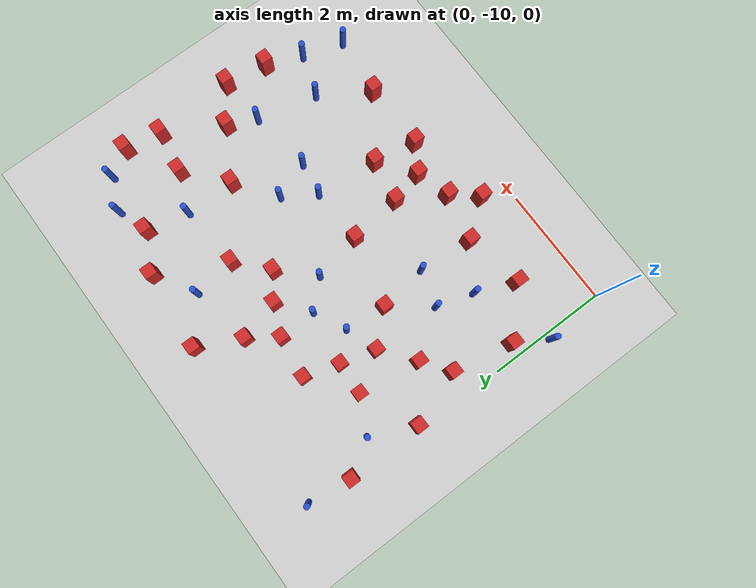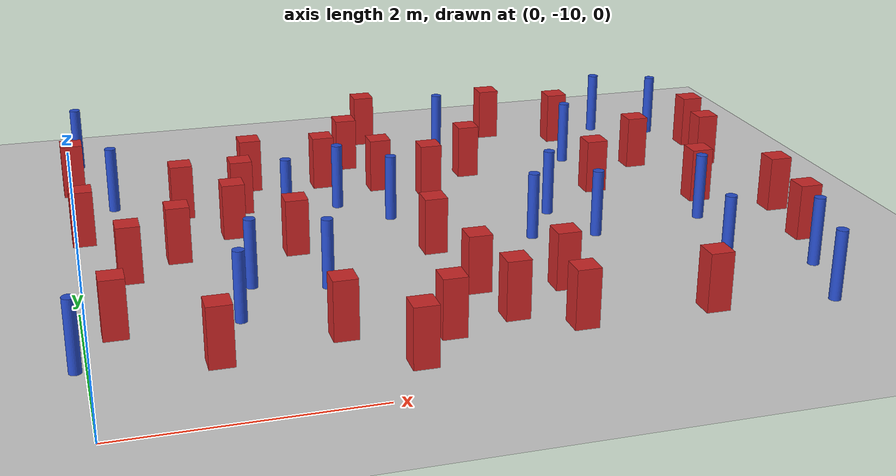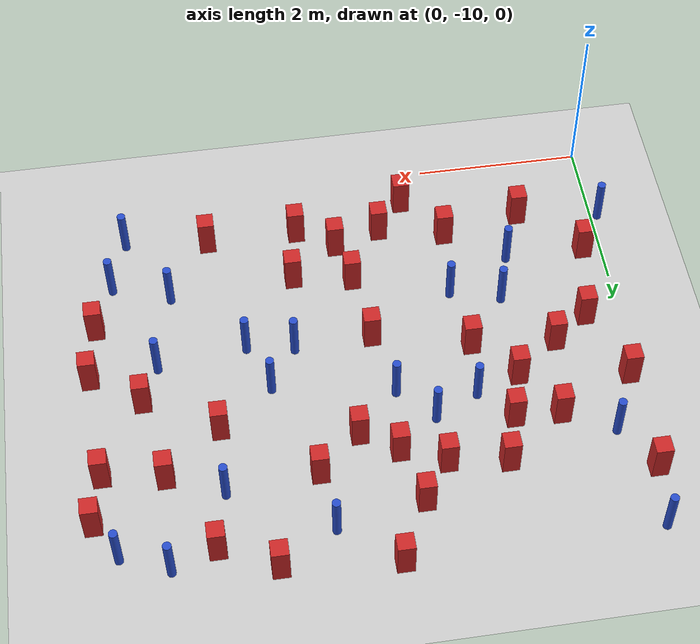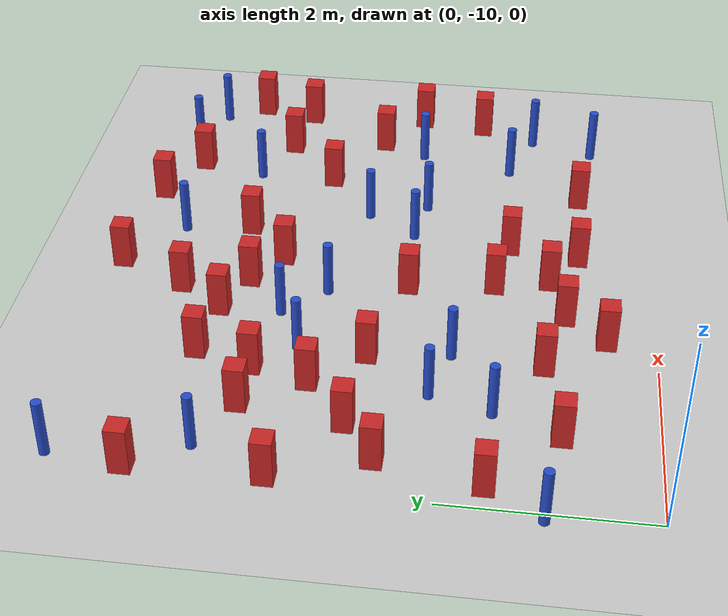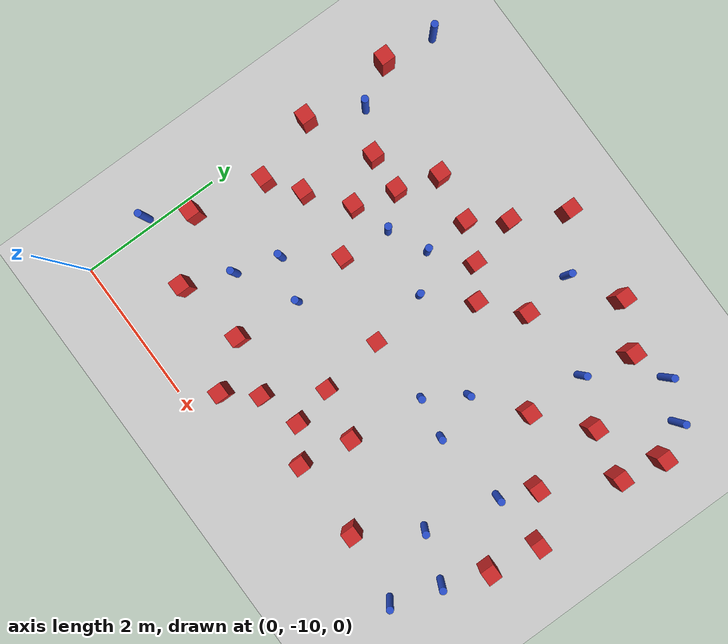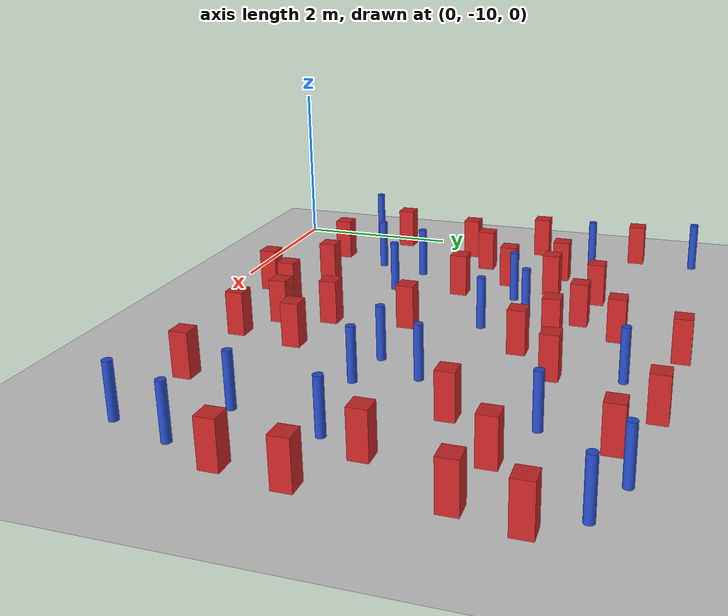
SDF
<sdf version="1.6">
 <world name="default">
  <model name="ground_plane">
   <static>1</static>
   <link name="link">
    <collision name="collision">
     <geometry><plane><normal>0 0 1</normal><size>100 100</size></plane></geometry>
     <surface><friction><ode><mu>100</mu><mu2>50</mu2></ode></friction></surface>
    </collision>
    <visual name="visual">
     <cast_shadows>0</cast_shadows>
     <geometry><plane><normal>0 0 1</normal><size>100 100</size></plane></geometry>
     <material>
      <ambient>1.0 1.0 1.0 1.0</ambient>
      <diffuse>0.8 0.8 0.8 1.0</diffuse>
      <specular>0.01 0.01 0.01 1.000000</specular>
     </material>
    </visual>
   </link>
  </model>
  <model name="pole_obstacle1">
   <static>true</static>
   <pose>5.56627809664 -7.40692104979 -9.47619616065e-06 5.49618799737e-07 2.36310414037e-07 -1.55090534814e-07</pose>
   <link name="link">
    <pose>0 0 0.3 0 -0 0</pose>
    <inertial>
     <mass>1</mass>
     <inertia><ixx>0.145833</ixx><ixy>0</ixy><ixz>0</ixz><iyy>0.145833</iyy><iyz>0</iyz><izz>0.125</izz></inertia>
    </inertial>
    <collision name="collision">
     <geometry><cylinder><radius>0.05</radius><length>.6</length></cylinder></geometry>
    </collision>
    <visual name="visual">
     <geometry><cylinder><radius>0.05</radius><length>.6</length></cylinder></geometry>
     <material>
      <script><name>Gazebo/Blue</name><uri>file://media/materials/scripts/gazebo.material</uri></script>
     </material>
    </visual>
   </link>
  </model>
  <model name="square_post_obstacle19">
   <static>true</static>
   <pose>5.09355135205 -4.90761829041 -6.11067671241e-07 -5.50515727128e-06 -8.79689657224e-07 2.37013304536e-05</pose>
   <link name="link">
    <pose>0 0 0.25 0 -0 0</pose>
    <inertial>
     <mass>100</mass>
     <inertia>
      <ixx>0.166667</ixx>
      <ixy>0</ixy>
      <ixz>0</ixz>
      <iyy>0.166667</iyy>
      <iyz>0</iyz>
      <izz>0.166667</izz>
     </inertia>
    </inertial>
    <collision name="collision"><geometry><box><size>.2 .2 .5</size></box></geometry></collision>
    <visual name="visual">
     <geometry><box><size>.2 .2 .5</size></box></geometry>
     <material>
      <script><name>Gazebo/Red</name><uri>file://media/materials/scripts/gazebo.material</uri></script>
     </material>
    </visual>
   </link>
  </model>
  <model name="square_post_obstacle20">
   <static>true</static>
   <pose>3.11336619792 -4.46068472534 -6.11067671241e-07 -5.50515727128e-06 -8.79689657224e-07 2.37013304536e-05</pose>
   <link name="link">
    <pose>0 0 0.25 0 -0 0</pose>
    <inertial>
     <mass>100</mass>
     <inertia>
      <ixx>0.166667</ixx>
      <ixy>0</ixy>
      <ixz>0</ixz>
      <iyy>0.166667</iyy>
      <iyz>0</iyz>
      <izz>0.166667</izz>
     </inertia>
    </inertial>
    <collision name="collision"><geometry><box><size>.2 .2 .5</size></box></geometry></collision>
    <visual name="visual">
     <geometry><box><size>.2 .2 .5</size></box></geometry>
     <material>
      <script><name>Gazebo/Red</name><uri>file://media/materials/scripts/gazebo.material</uri></script>
     </material>
    </visual>
   </link>
  </model>
  <model name="pole_obstacle13">
   <static>true</static>
   <pose>0.439902832676 -5.78268501385 -9.47619616065e-06 5.49618799737e-07 2.36310414065e-07 -1.55090534796e-07</pose>
   <link name="link">
    <pose>0 0 0.3 0 -0 0</pose>
    <inertial>
     <mass>1</mass>
     <inertia><ixx>0.145833</ixx><ixy>0</ixy><ixz>0</ixz><iyy>0.145833</iyy><iyz>0</iyz><izz>0.125</izz></inertia>
    </inertial>
    <collision name="collision">
     <geometry><cylinder><radius>0.05</radius><length>.6</length></cylinder></geometry>
    </collision>
    <visual name="visual">
     <geometry><cylinder><radius>0.05</radius><length>.6</length></cylinder></geometry>
     <material>
      <script><name>Gazebo/Blue</name><uri>file://media/materials/scripts/gazebo.material</uri></script>
     </material>
    </visual>
   </link>
  </model>
  <model name="pole_obstacle16">
   <static>true</static>
   <pose>-0.0822495026502 -8.96081779854 -9.47619616065e-06 5.49618799738e-07 2.36310414031e-07 -1.55090534818e-07</pose>
   <link name="link">
    <pose>0 0 0.3 0 -0 0</pose>
    <inertial>
     <mass>1</mass>
     <inertia><ixx>0.145833</ixx><ixy>0</ixy><ixz>0</ixz><iyy>0.145833</iyy><iyz>0</iyz><izz>0.125</izz></inertia>
    </inertial>
    <collision name="collision">
     <geometry><cylinder><radius>0.05</radius><length>.6</length></cylinder></geometry>
    </collision>
    <visual name="visual">
     <geometry><cylinder><radius>0.05</radius><length>.6</length></cylinder></geometry>
     <material>
      <script><name>Gazebo/Blue</name><uri>file://media/materials/scripts/gazebo.material</uri></script>
     </material>
    </visual>
   </link>
  </model>
  <model name="square_post_obstacle27">
   <static>true</static>
   <pose>2.94282083598 -5.85030339063 -6.11067671241e-07 -5.50515727128e-06 -8.79689657224e-07 2.37013304536e-05</pose>
   <link name="link">
    <pose>0 0 0.25 0 -0 0</pose>
    <inertial>
     <mass>100</mass>
     <inertia>
      <ixx>0.166667</ixx>
      <ixy>0</ixy>
      <ixz>0</ixz>
      <iyy>0.166667</iyy>
      <iyz>0</iyz>
      <izz>0.166667</izz>
     </inertia>
    </inertial>
    <collision name="collision"><geometry><box><size>.2 .2 .5</size></box></geometry></collision>
    <visual name="visual">
     <geometry><box><size>.2 .2 .5</size></box></geometry>
     <material>
      <script><name>Gazebo/Red</name><uri>file://media/materials/scripts/gazebo.material</uri></script>
     </material>
    </visual>
   </link>
  </model>
  <model name="pole_obstacle43">
   <static>true</static>
   <pose>6.16214379933 -4.95591234419 -9.47619616065e-06 5.49618799737e-07 2.36310414037e-07 -1.55090534814e-07</pose>
   <link name="link">
    <pose>0 0 0.3 0 -0 0</pose>
    <inertial>
     <mass>1</mass>
     <inertia><ixx>0.145833</ixx><ixy>0</ixy><ixz>0</ixz><iyy>0.145833</iyy><iyz>0</iyz><izz>0.125</izz></inertia>
    </inertial>
    <collision name="collision">
     <geometry><cylinder><radius>0.05</radius><length>.6</length></cylinder></geometry>
    </collision>
    <visual name="visual">
     <geometry><cylinder><radius>0.05</radius><length>.6</length></cylinder></geometry>
     <material>
      <script><name>Gazebo/Blue</name><uri>file://media/materials/scripts/gazebo.material</uri></script>
     </material>
    </visual>
   </link>
  </model>
  <model name="pole_obstacle45">
   <static>true</static>
   <pose>1.38102999543 -7.83665164656 -9.47619616065e-06 5.49618799737e-07 2.36310414061e-07 -1.550905348e-07</pose>
   <link name="link">
    <pose>0 0 0.3 0 -0 0</pose>
    <inertial>
     <mass>1</mass>
     <inertia><ixx>0.145833</ixx><ixy>0</ixy><ixz>0</ixz><iyy>0.145833</iyy><iyz>0</iyz><izz>0.125</izz></inertia>
    </inertial>
    <collision name="collision">
     <geometry><cylinder><radius>0.05</radius><length>.6</length></cylinder></geometry>
    </collision>
    <visual name="visual">
     <geometry><cylinder><radius>0.05</radius><length>.6</length></cylinder></geometry>
     <material>
      <script><name>Gazebo/Blue</name><uri>file://media/materials/scripts/gazebo.material</uri></script>
     </material>
    </visual>
   </link>
  </model>
  <model name="pole_obstacle46">
   <static>true</static>
   <pose>0.19000915505 -4.49773315218 -9.47619616065e-06 5.49618799738e-07 2.36310414064e-07 -1.55090534799e-07</pose>
   <link name="link">
    <pose>0 0 0.3 0 -0 0</pose>
    <inertial>
     <mass>1</mass>
     <inertia><ixx>0.145833</ixx><ixy>0</ixy><ixz>0</ixz><iyy>0.145833</iyy><iyz>0</iyz><izz>0.125</izz></inertia>
    </inertial>
    <collision name="collision">
     <geometry><cylinder><radius>0.05</radius><length>.6</length></cylinder></geometry>
    </collision>
    <visual name="visual">
     <geometry><cylinder><radius>0.05</radius><length>.6</length></cylinder></geometry>
     <material>
      <script><name>Gazebo/Blue</name><uri>file://media/materials/scripts/gazebo.material</uri></script>
     </material>
    </visual>
   </link>
  </model>
  <model name="pole_obstacle48">
   <static>true</static>
   <pose>2.85308433493 -6.67141594761 -9.47619616065e-06 5.49618799738e-07 2.3631041406e-07 -1.55090534801e-07</pose>
   <link name="link">
    <pose>0 0 0.3 0 -0 0</pose>
    <inertial>
     <mass>1</mass>
     <inertia><ixx>0.145833</ixx><ixy>0</ixy><ixz>0</ixz><iyy>0.145833</iyy><iyz>0</iyz><izz>0.125</izz></inertia>
    </inertial>
    <collision name="collision">
     <geometry><cylinder><radius>0.05</radius><length>.6</length></cylinder></geometry>
    </collision>
    <visual name="visual">
     <geometry><cylinder><radius>0.05</radius><length>.6</length></cylinder></geometry>
     <material>
      <script><name>Gazebo/Blue</name><uri>file://media/materials/scripts/gazebo.material</uri></script>
     </material>
    </visual>
   </link>
  </model>
  <model name="square_post_obstacle57">
   <static>true</static>
   <pose>0.442859099427 -7.41946272738 -6.11067671241e-07 -5.50515727128e-06 -8.79689657224e-07 2.37013304536e-05</pose>
   <link name="link">
    <pose>0 0 0.25 0 -0 0</pose>
    <inertial>
     <mass>100</mass>
     <inertia>
      <ixx>0.166667</ixx>
      <ixy>0</ixy>
      <ixz>0</ixz>
      <iyy>0.166667</iyy>
      <iyz>0</iyz>
      <izz>0.166667</izz>
     </inertia>
    </inertial>
    <collision name="collision"><geometry><box><size>.2 .2 .5</size></box></geometry></collision>
    <visual name="visual">
     <geometry><box><size>.2 .2 .5</size></box></geometry>
     <material>
      <script><name>Gazebo/Red</name><uri>file://media/materials/scripts/gazebo.material</uri></script>
     </material>
    </visual>
   </link>
  </model>
  <model name="square_post_obstacle61">
   <static>true</static>
   <pose>3.86990964567 -5.6933514289 -6.11067671241e-07 -5.50515727128e-06 -8.79689657224e-07 2.37013304536e-05</pose>
   <link name="link">
    <pose>0 0 0.25 0 -0 0</pose>
    <inertial>
     <mass>100</mass>
     <inertia>
      <ixx>0.166667</ixx>
      <ixy>0</ixy>
      <ixz>0</ixz>
      <iyy>0.166667</iyy>
      <iyz>0</iyz>
      <izz>0.166667</izz>
     </inertia>
    </inertial>
    <collision name="collision"><geometry><box><size>.2 .2 .5</size></box></geometry></collision>
    <visual name="visual">
     <geometry><box><size>.2 .2 .5</size></box></geometry>
     <material>
      <script><name>Gazebo/Red</name><uri>file://media/materials/scripts/gazebo.material</uri></script>
     </material>
    </visual>
   </link>
  </model>
  <model name="square_post_obstacle62">
   <static>true</static>
   <pose>0.240696478862 -8.42893630867 -6.11067671241e-07 -5.50515727128e-06 -8.79689657224e-07 2.37013304536e-05</pose>
   <link name="link">
    <pose>0 0 0.25 0 -0 0</pose>
    <inertial>
     <mass>100</mass>
     <inertia>
      <ixx>0.166667</ixx>
      <ixy>0</ixy>
      <ixz>0</ixz>
      <iyy>0.166667</iyy>
      <iyz>0</iyz>
      <izz>0.166667</izz>
     </inertia>
    </inertial>
    <collision name="collision"><geometry><box><size>.2 .2 .5</size></box></geometry></collision>
    <visual name="visual">
     <geometry><box><size>.2 .2 .5</size></box></geometry>
     <material>
      <script><name>Gazebo/Red</name><uri>file://media/materials/scripts/gazebo.material</uri></script>
     </material>
    </visual>
   </link>
  </model>
  <model name="pole_obstacle70">
   <static>true</static>
   <pose>5.82374251369 -9.33074052029 -9.47619616065e-06 5.49618799737e-07 2.36310414065e-07 -1.55090534796e-07</pose>
   <link name="link">
    <pose>0 0 0.3 0 -0 0</pose>
    <inertial>
     <mass>1</mass>
     <inertia><ixx>0.145833</ixx><ixy>0</ixy><ixz>0</ixz><iyy>0.145833</iyy><iyz>0</iyz><izz>0.125</izz></inertia>
    </inertial>
    <collision name="collision">
     <geometry><cylinder><radius>0.05</radius><length>.6</length></cylinder></geometry>
    </collision>
    <visual name="visual">
     <geometry><cylinder><radius>0.05</radius><length>.6</length></cylinder></geometry>
     <material>
      <script><name>Gazebo/Blue</name><uri>file://media/materials/scripts/gazebo.material</uri></script>
     </material>
    </visual>
   </link>
  </model>
  <model name="pole_obstacle71">
   <static>true</static>
   <pose>5.33723821792 -8.4129558654 -9.47619616065e-06 5.49618799737e-07 2.36310414065e-07 -1.55090534796e-07</pose>
   <link name="link">
    <pose>0 0 0.3 0 -0 0</pose>
    <inertial>
     <mass>1</mass>
     <inertia><ixx>0.145833</ixx><ixy>0</ixy><ixz>0</ixz><iyy>0.145833</iyy><iyz>0</iyz><izz>0.125</izz></inertia>
    </inertial>
    <collision name="collision">
     <geometry><cylinder><radius>0.05</radius><length>.6</length></cylinder></geometry>
    </collision>
    <visual name="visual">
     <geometry><cylinder><radius>0.05</radius><length>.6</length></cylinder></geometry>
     <material>
      <script><name>Gazebo/Blue</name><uri>file://media/materials/scripts/gazebo.material</uri></script>
     </material>
    </visual>
   </link>
  </model>
  <model name="pole_obstacle83">
   <static>true</static>
   <pose>1.19721483378 -8.44556449357 -9.47619616065e-06 5.49618799737e-07 2.36310414046e-07 -1.55090534809e-07</pose>
   <link name="link">
    <pose>0 0 0.3 0 -0 0</pose>
    <inertial>
     <mass>1</mass>
     <inertia><ixx>0.145833</ixx><ixy>0</ixy><ixz>0</ixz><iyy>0.145833</iyy><iyz>0</iyz><izz>0.125</izz></inertia>
    </inertial>
    <collision name="collision">
     <geometry><cylinder><radius>0.05</radius><length>.6</length></cylinder></geometry>
    </collision>
    <visual name="visual">
     <geometry><cylinder><radius>0.05</radius><length>.6</length></cylinder></geometry>
     <material>
      <script><name>Gazebo/Blue</name><uri>file://media/materials/scripts/gazebo.material</uri></script>
     </material>
    </visual>
   </link>
  </model>
  <model name="pole_obstacle93">
   <static>true</static>
   <pose>4.27768461021 -6.929750021 -9.47619616065e-06 5.49618799737e-07 2.36310414037e-07 -1.55090534814e-07</pose>
   <link name="link">
    <pose>0 0 0.3 0 -0 0</pose>
    <inertial>
     <mass>1</mass>
     <inertia><ixx>0.145833</ixx><ixy>0</ixy><ixz>0</ixz><iyy>0.145833</iyy><iyz>0</iyz><izz>0.125</izz></inertia>
    </inertial>
    <collision name="collision">
     <geometry><cylinder><radius>0.05</radius><length>.6</length></cylinder></geometry>
    </collision>
    <visual name="visual">
     <geometry><cylinder><radius>0.05</radius><length>.6</length></cylinder></geometry>
     <material>
      <script><name>Gazebo/Blue</name><uri>file://media/materials/scripts/gazebo.material</uri></script>
     </material>
    </visual>
   </link>
  </model>
  <model name="square_post_obstacle83">
   <static>true</static>
   <pose>6.41569011059 -5.39757872294 -6.11067671241e-07 -5.50515727128e-06 -8.79689657224e-07 2.37013304536e-05</pose>
   <link name="link">
    <pose>0 0 0.25 0 -0 0</pose>
    <inertial>
     <mass>100</mass>
     <inertia>
      <ixx>0.166667</ixx>
      <ixy>0</ixy>
      <ixz>0</ixz>
      <iyy>0.166667</iyy>
      <iyz>0</iyz>
      <izz>0.166667</izz>
     </inertia>
    </inertial>
    <collision name="collision"><geometry><box><size>.2 .2 .5</size></box></geometry></collision>
    <visual name="visual">
     <geometry><box><size>.2 .2 .5</size></box></geometry>
     <material>
      <script><name>Gazebo/Red</name><uri>file://media/materials/scripts/gazebo.material</uri></script>
     </material>
    </visual>
   </link>
  </model>
  <model name="square_post_obstacle93">
   <static>true</static>
   <pose>3.12840448905 -8.36266401416 -6.11067671241e-07 -5.50515727128e-06 -8.79689657224e-07 2.37013304536e-05</pose>
   <link name="link">
    <pose>0 0 0.25 0 -0 0</pose>
    <inertial>
     <mass>100</mass>
     <inertia>
      <ixx>0.166667</ixx>
      <ixy>0</ixy>
      <ixz>0</ixz>
      <iyy>0.166667</iyy>
      <iyz>0</iyz>
      <izz>0.166667</izz>
     </inertia>
    </inertial>
    <collision name="collision"><geometry><box><size>.2 .2 .5</size></box></geometry></collision>
    <visual name="visual">
     <geometry><box><size>.2 .2 .5</size></box></geometry>
     <material>
      <script><name>Gazebo/Red</name><uri>file://media/materials/scripts/gazebo.material</uri></script>
     </material>
    </visual>
   </link>
  </model>
  <model name="pole_obstacle106">
   <static>true</static>
   <pose>3.94224176989 -7.45162938686 -9.47619616065e-06 5.49618799738e-07 2.3631041406e-07 -1.55090534801e-07</pose>
   <link name="link">
    <pose>0 0 0.3 0 -0 0</pose>
    <inertial>
     <mass>1</mass>
     <inertia><ixx>0.145833</ixx><ixy>0</ixy><ixz>0</ixz><iyy>0.145833</iyy><iyz>0</iyz><izz>0.125</izz></inertia>
    </inertial>
    <collision name="collision">
     <geometry><cylinder><radius>0.05</radius><length>.6</length></cylinder></geometry>
    </collision>
    <visual name="visual">
     <geometry><cylinder><radius>0.05</radius><length>.6</length></cylinder></geometry>
     <material>
      <script><name>Gazebo/Blue</name><uri>file://media/materials/scripts/gazebo.material</uri></script>
     </material>
    </visual>
   </link>
  </model>
  <model name="pole_obstacle107">
   <static>true</static>
   <pose>3.78141471582 -4.97444473484 -9.47619616065e-06 5.49618799738e-07 2.3631041406e-07 -1.55090534801e-07</pose>
   <link name="link">
    <pose>0 0 0.3 0 -0 0</pose>
    <inertial>
     <mass>1</mass>
     <inertia><ixx>0.145833</ixx><ixy>0</ixy><ixz>0</ixz><iyy>0.145833</iyy><iyz>0</iyz><izz>0.125</izz></inertia>
    </inertial>
    <collision name="collision">
     <geometry><cylinder><radius>0.05</radius><length>.6</length></cylinder></geometry>
    </collision>
    <visual name="visual">
     <geometry><cylinder><radius>0.05</radius><length>.6</length></cylinder></geometry>
     <material>
      <script><name>Gazebo/Blue</name><uri>file://media/materials/scripts/gazebo.material</uri></script>
     </material>
    </visual>
   </link>
  </model>
  <model name="square_post_obstacle97">
   <static>true</static>
   <pose>2.35522278714 -9.49866197872 -6.11067671241e-07 -5.50515727128e-06 -8.79689657224e-07 2.37013304536e-05</pose>
   <link name="link">
    <pose>0 0 0.25 0 -0 0</pose>
    <inertial>
     <mass>100</mass>
     <inertia>
      <ixx>0.166667</ixx>
      <ixy>0</ixy>
      <ixz>0</ixz>
      <iyy>0.166667</iyy>
      <iyz>0</iyz>
      <izz>0.166667</izz>
     </inertia>
    </inertial>
    <collision name="collision"><geometry><box><size>.2 .2 .5</size></box></geometry></collision>
    <visual name="visual">
     <geometry><box><size>.2 .2 .5</size></box></geometry>
     <material>
      <script><name>Gazebo/Red</name><uri>file://media/materials/scripts/gazebo.material</uri></script>
     </material>
    </visual>
   </link>
  </model>
  <model name="square_post_obstacle107">
   <static>true</static>
   <pose>4.92158257431 -6.43737209554 -6.11067671241e-07 -5.50515727128e-06 -8.79689657224e-07 2.37013304536e-05</pose>
   <link name="link">
    <pose>0 0 0.25 0 -0 0</pose>
    <inertial>
     <mass>100</mass>
     <inertia>
      <ixx>0.166667</ixx>
      <ixy>0</ixy>
      <ixz>0</ixz>
      <iyy>0.166667</iyy>
      <iyz>0</iyz>
      <izz>0.166667</izz>
     </inertia>
    </inertial>
    <collision name="collision"><geometry><box><size>.2 .2 .5</size></box></geometry></collision>
    <visual name="visual">
     <geometry><box><size>.2 .2 .5</size></box></geometry>
     <material>
      <script><name>Gazebo/Red</name><uri>file://media/materials/scripts/gazebo.material</uri></script>
     </material>
    </visual>
   </link>
  </model>
  <model name="pole_obstacle133">
   <static>true</static>
   <pose>5.61044562742 -4.72520480115 -9.47619616065e-06 5.49618799737e-07 2.36310414037e-07 -1.55090534814e-07</pose>
   <link name="link">
    <pose>0 0 0.3 0 -0 0</pose>
    <inertial>
     <mass>1</mass>
     <inertia><ixx>0.145833</ixx><ixy>0</ixy><ixz>0</ixz><iyy>0.145833</iyy><iyz>0</iyz><izz>0.125</izz></inertia>
    </inertial>
    <collision name="collision">
     <geometry><cylinder><radius>0.05</radius><length>.6</length></cylinder></geometry>
    </collision>
    <visual name="visual">
     <geometry><cylinder><radius>0.05</radius><length>.6</length></cylinder></geometry>
     <material>
      <script><name>Gazebo/Blue</name><uri>file://media/materials/scripts/gazebo.material</uri></script>
     </material>
    </visual>
   </link>
  </model>
  <model name="square_post_obstacle115">
   <static>true</static>
   <pose>3.26064909502 -8.91699776608 -6.11067671241e-07 -5.50515727128e-06 -8.79689657224e-07 2.37013304536e-05</pose>
   <link name="link">
    <pose>0 0 0.25 0 -0 0</pose>
    <inertial>
     <mass>100</mass>
     <inertia>
      <ixx>0.166667</ixx>
      <ixy>0</ixy>
      <ixz>0</ixz>
      <iyy>0.166667</iyy>
      <iyz>0</iyz>
      <izz>0.166667</izz>
     </inertia>
    </inertial>
    <collision name="collision"><geometry><box><size>.2 .2 .5</size></box></geometry></collision>
    <visual name="visual">
     <geometry><box><size>.2 .2 .5</size></box></geometry>
     <material>
      <script><name>Gazebo/Red</name><uri>file://media/materials/scripts/gazebo.material</uri></script>
     </material>
    </visual>
   </link>
  </model>
  <model name="pole_obstacle137">
   <static>true</static>
   <pose>4.50637492349 -7.54519051765 -9.47619616065e-06 5.49618799737e-07 2.36310414037e-07 -1.55090534814e-07</pose>
   <link name="link">
    <pose>0 0 0.3 0 -0 0</pose>
    <inertial>
     <mass>1</mass>
     <inertia><ixx>0.145833</ixx><ixy>0</ixy><ixz>0</ixz><iyy>0.145833</iyy><iyz>0</iyz><izz>0.125</izz></inertia>
    </inertial>
    <collision name="collision">
     <geometry><cylinder><radius>0.05</radius><length>.6</length></cylinder></geometry>
    </collision>
    <visual name="visual">
     <geometry><cylinder><radius>0.05</radius><length>.6</length></cylinder></geometry>
     <material>
      <script><name>Gazebo/Blue</name><uri>file://media/materials/scripts/gazebo.material</uri></script>
     </material>
    </visual>
   </link>
  </model>
  <model name="square_post_obstacle119">
   <static>true</static>
   <pose>5.58362540392 -5.87826458118 -6.11067671241e-07 -5.50515727128e-06 -8.79689657224e-07 2.37013304536e-05</pose>
   <link name="link">
    <pose>0 0 0.25 0 -0 0</pose>
    <inertial>
     <mass>100</mass>
     <inertia>
      <ixx>0.166667</ixx>
      <ixy>0</ixy>
      <ixz>0</ixz>
      <iyy>0.166667</iyy>
      <iyz>0</iyz>
      <izz>0.166667</izz>
     </inertia>
    </inertial>
    <collision name="collision"><geometry><box><size>.2 .2 .5</size></box></geometry></collision>
    <visual name="visual">
     <geometry><box><size>.2 .2 .5</size></box></geometry>
     <material>
      <script><name>Gazebo/Red</name><uri>file://media/materials/scripts/gazebo.material</uri></script>
     </material>
    </visual>
   </link>
  </model>
  <model name="square_post_obstacle122">
   <static>true</static>
   <pose>1.03014435743 -6.08361916989 -6.11067671241e-07 -5.50515727128e-06 -8.79689657224e-07 2.37013304536e-05</pose>
   <link name="link">
    <pose>0 0 0.25 0 -0 0</pose>
    <inertial>
     <mass>100</mass>
     <inertia>
      <ixx>0.166667</ixx>
      <ixy>0</ixy>
      <ixz>0</ixz>
      <iyy>0.166667</iyy>
      <iyz>0</iyz>
      <izz>0.166667</izz>
     </inertia>
    </inertial>
    <collision name="collision"><geometry><box><size>.2 .2 .5</size></box></geometry></collision>
    <visual name="visual">
     <geometry><box><size>.2 .2 .5</size></box></geometry>
     <material>
      <script><name>Gazebo/Red</name><uri>file://media/materials/scripts/gazebo.material</uri></script>
     </material>
    </visual>
   </link>
  </model>
  <model name="square_post_obstacle123">
   <static>true</static>
   <pose>3.36249173021 -6.13725128052 -6.11067671241e-07 -5.50515727128e-06 -8.79689657224e-07 2.37013304536e-05</pose>
   <link name="link">
    <pose>0 0 0.25 0 -0 0</pose>
    <inertial>
     <mass>100</mass>
     <inertia>
      <ixx>0.166667</ixx>
      <ixy>0</ixy>
      <ixz>0</ixz>
      <iyy>0.166667</iyy>
      <iyz>0</iyz>
      <izz>0.166667</izz>
     </inertia>
    </inertial>
    <collision name="collision"><geometry><box><size>.2 .2 .5</size></box></geometry></collision>
    <visual name="visual">
     <geometry><box><size>.2 .2 .5</size></box></geometry>
     <material>
      <script><name>Gazebo/Red</name><uri>file://media/materials/scripts/gazebo.material</uri></script>
     </material>
    </visual>
   </link>
  </model>
  <model name="square_post_obstacle125">
   <static>true</static>
   <pose>1.74412008128 -5.53983077641 -6.11067671241e-07 -5.50515727128e-06 -8.79689657224e-07 2.37013304536e-05</pose>
   <link name="link">
    <pose>0 0 0.25 0 -0 0</pose>
    <inertial>
     <mass>100</mass>
     <inertia>
      <ixx>0.166667</ixx>
      <ixy>0</ixy>
      <ixz>0</ixz>
      <iyy>0.166667</iyy>
      <iyz>0</iyz>
      <izz>0.166667</izz>
     </inertia>
    </inertial>
    <collision name="collision"><geometry><box><size>.2 .2 .5</size></box></geometry></collision>
    <visual name="visual">
     <geometry><box><size>.2 .2 .5</size></box></geometry>
     <material>
      <script><name>Gazebo/Red</name><uri>file://media/materials/scripts/gazebo.material</uri></script>
     </material>
    </visual>
   </link>
  </model>
  <model name="square_post_obstacle131">
   <static>true</static>
   <pose>3.83515359694 -8.49034299269 -6.11067671241e-07 -5.50515727128e-06 -8.79689657224e-07 2.37013304536e-05</pose>
   <link name="link">
    <pose>0 0 0.25 0 -0 0</pose>
    <inertial>
     <mass>100</mass>
     <inertia>
      <ixx>0.166667</ixx>
      <ixy>0</ixy>
      <ixz>0</ixz>
      <iyy>0.166667</iyy>
      <iyz>0</iyz>
      <izz>0.166667</izz>
     </inertia>
    </inertial>
    <collision name="collision"><geometry><box><size>.2 .2 .5</size></box></geometry></collision>
    <visual name="visual">
     <geometry><box><size>.2 .2 .5</size></box></geometry>
     <material>
      <script><name>Gazebo/Red</name><uri>file://media/materials/scripts/gazebo.material</uri></script>
     </material>
    </visual>
   </link>
  </model>
  <model name="square_post_obstacle135">
   <static>true</static>
   <pose>0.8789119352 -7.10312186682 -6.11067671241e-07 -5.50515727128e-06 -8.79689657224e-07 2.37013304536e-05</pose>
   <link name="link">
    <pose>0 0 0.25 0 -0 0</pose>
    <inertial>
     <mass>100</mass>
     <inertia>
      <ixx>0.166667</ixx>
      <ixy>0</ixy>
      <ixz>0</ixz>
      <iyy>0.166667</iyy>
      <iyz>0</iyz>
      <izz>0.166667</izz>
     </inertia>
    </inertial>
    <collision name="collision"><geometry><box><size>.2 .2 .5</size></box></geometry></collision>
    <visual name="visual">
     <geometry><box><size>.2 .2 .5</size></box></geometry>
     <material>
      <script><name>Gazebo/Red</name><uri>file://media/materials/scripts/gazebo.material</uri></script>
     </material>
    </visual>
   </link>
  </model>
  <model name="pole_obstacle148">
   <static>true</static>
   <pose>1.92679843569 -6.50304114384 -9.47619616065e-06 5.49618799737e-07 2.36310414061e-07 -1.550905348e-07</pose>
   <link name="link">
    <pose>0 0 0.3 0 -0 0</pose>
    <inertial>
     <mass>1</mass>
     <inertia><ixx>0.145833</ixx><ixy>0</ixy><ixz>0</ixz><iyy>0.145833</iyy><iyz>0</iyz><izz>0.125</izz></inertia>
    </inertial>
    <collision name="collision">
     <geometry><cylinder><radius>0.05</radius><length>.6</length></cylinder></geometry>
    </collision>
    <visual name="visual">
     <geometry><cylinder><radius>0.05</radius><length>.6</length></cylinder></geometry>
     <material>
      <script><name>Gazebo/Blue</name><uri>file://media/materials/scripts/gazebo.material</uri></script>
     </material>
    </visual>
   </link>
  </model>
  <model name="square_post_obstacle139">
   <static>true</static>
   <pose>2.76067890928 -5.17001833083 -6.11067671241e-07 -5.50515727128e-06 -8.79689657224e-07 2.37013304536e-05</pose>
   <link name="link">
    <pose>0 0 0.25 0 -0 0</pose>
    <inertial>
     <mass>100</mass>
     <inertia>
      <ixx>0.166667</ixx>
      <ixy>0</ixy>
      <ixz>0</ixz>
      <iyy>0.166667</iyy>
      <iyz>0</iyz>
      <izz>0.166667</izz>
     </inertia>
    </inertial>
    <collision name="collision"><geometry><box><size>.2 .2 .5</size></box></geometry></collision>
    <visual name="visual">
     <geometry><box><size>.2 .2 .5</size></box></geometry>
     <material>
      <script><name>Gazebo/Red</name><uri>file://media/materials/scripts/gazebo.material</uri></script>
     </material>
    </visual>
   </link>
  </model>
  <model name="square_post_obstacle144">
   <static>true</static>
   <pose>4.81986850343 -9.2004147966 -6.11067671241e-07 -5.50515727128e-06 -8.79689657224e-07 2.37013304536e-05</pose>
   <link name="link">
    <pose>0 0 0.25 0 -0 0</pose>
    <inertial>
     <mass>100</mass>
     <inertia>
      <ixx>0.166667</ixx>
      <ixy>0</ixy>
      <ixz>0</ixz>
      <iyy>0.166667</iyy>
      <iyz>0</iyz>
      <izz>0.166667</izz>
     </inertia>
    </inertial>
    <collision name="collision"><geometry><box><size>.2 .2 .5</size></box></geometry></collision>
    <visual name="visual">
     <geometry><box><size>.2 .2 .5</size></box></geometry>
     <material>
      <script><name>Gazebo/Red</name><uri>file://media/materials/scripts/gazebo.material</uri></script>
     </material>
    </visual>
   </link>
  </model>
  <model name="square_post_obstacle152">
   <static>true</static>
   <pose>3.71461707021 -9.20730704973 -6.11067671241e-07 -5.50515727128e-06 -8.79689657224e-07 2.37013304536e-05</pose>
   <link name="link">
    <pose>0 0 0.25 0 -0 0</pose>
    <inertial>
     <mass>100</mass>
     <inertia>
      <ixx>0.166667</ixx>
      <ixy>0</ixy>
      <ixz>0</ixz>
      <iyy>0.166667</iyy>
      <iyz>0</iyz>
      <izz>0.166667</izz>
     </inertia>
    </inertial>
    <collision name="collision"><geometry><box><size>.2 .2 .5</size></box></geometry></collision>
    <visual name="visual">
     <geometry><box><size>.2 .2 .5</size></box></geometry>
     <material>
      <script><name>Gazebo/Red</name><uri>file://media/materials/scripts/gazebo.material</uri></script>
     </material>
    </visual>
   </link>
  </model>
  <model name="square_post_obstacle153">
   <static>true</static>
   <pose>3.01973210206 -7.48353499313 -6.11067671241e-07 -5.50515727128e-06 -8.79689657224e-07 2.37013304536e-05</pose>
   <link name="link">
    <pose>0 0 0.25 0 -0 0</pose>
    <inertial>
     <mass>100</mass>
     <inertia>
      <ixx>0.166667</ixx>
      <ixy>0</ixy>
      <ixz>0</ixz>
      <iyy>0.166667</iyy>
      <iyz>0</iyz>
      <izz>0.166667</izz>
     </inertia>
    </inertial>
    <collision name="collision"><geometry><box><size>.2 .2 .5</size></box></geometry></collision>
    <visual name="visual">
     <geometry><box><size>.2 .2 .5</size></box></geometry>
     <material>
      <script><name>Gazebo/Red</name><uri>file://media/materials/scripts/gazebo.material</uri></script>
     </material>
    </visual>
   </link>
  </model>
  <model name="pole_obstacle162">
   <static>true</static>
   <pose>4.93815359858 -5.59829019831 -9.47619616065e-06 5.49618799737e-07 2.36310414037e-07 -1.55090534814e-07</pose>
   <link name="link">
    <pose>0 0 0.3 0 -0 0</pose>
    <inertial>
     <mass>1</mass>
     <inertia><ixx>0.145833</ixx><ixy>0</ixy><ixz>0</ixz><iyy>0.145833</iyy><iyz>0</iyz><izz>0.125</izz></inertia>
    </inertial>
    <collision name="collision">
     <geometry><cylinder><radius>0.05</radius><length>.6</length></cylinder></geometry>
    </collision>
    <visual name="visual">
     <geometry><cylinder><radius>0.05</radius><length>.6</length></cylinder></geometry>
     <material>
      <script><name>Gazebo/Blue</name><uri>file://media/materials/scripts/gazebo.material</uri></script>
     </material>
    </visual>
   </link>
  </model>
  <model name="pole_obstacle164">
   <static>true</static>
   <pose>1.98056831466 -8.0061862308 -9.47619616065e-06 5.49618799737e-07 2.3631041404e-07 -1.55090534813e-07</pose>
   <link name="link">
    <pose>0 0 0.3 0 -0 0</pose>
    <inertial>
     <mass>1</mass>
     <inertia><ixx>0.145833</ixx><ixy>0</ixy><ixz>0</ixz><iyy>0.145833</iyy><iyz>0</iyz><izz>0.125</izz></inertia>
    </inertial>
    <collision name="collision">
     <geometry><cylinder><radius>0.05</radius><length>.6</length></cylinder></geometry>
    </collision>
    <visual name="visual">
     <geometry><cylinder><radius>0.05</radius><length>.6</length></cylinder></geometry>
     <material>
      <script><name>Gazebo/Blue</name><uri>file://media/materials/scripts/gazebo.material</uri></script>
     </material>
    </visual>
   </link>
  </model>
  <model name="square_post_obstacle159">
   <static>true</static>
   <pose>0.941899313238 -9.0907162115 -6.11067671241e-07 -5.50515727128e-06 -8.79689657224e-07 2.37013304536e-05</pose>
   <link name="link">
    <pose>0 0 0.25 0 -0 0</pose>
    <inertial>
     <mass>100</mass>
     <inertia>
      <ixx>0.166667</ixx>
      <ixy>0</ixy>
      <ixz>0</ixz>
      <iyy>0.166667</iyy>
      <iyz>0</iyz>
      <izz>0.166667</izz>
     </inertia>
    </inertial>
    <collision name="collision"><geometry><box><size>.2 .2 .5</size></box></geometry></collision>
    <visual name="visual">
     <geometry><box><size>.2 .2 .5</size></box></geometry>
     <material>
      <script><name>Gazebo/Red</name><uri>file://media/materials/scripts/gazebo.material</uri></script>
     </material>
    </visual>
   </link>
  </model>
  <model name="square_post_obstacle160">
   <static>true</static>
   <pose>6.25529259501 -8.0561748064 -6.11067671241e-07 -5.50515727128e-06 -8.79689657224e-07 2.37013304536e-05</pose>
   <link name="link">
    <pose>0 0 0.25 0 -0 0</pose>
    <inertial>
     <mass>100</mass>
     <inertia>
      <ixx>0.166667</ixx>
      <ixy>0</ixy>
      <ixz>0</ixz>
      <iyy>0.166667</iyy>
      <iyz>0</iyz>
      <izz>0.166667</izz>
     </inertia>
    </inertial>
    <collision name="collision"><geometry><box><size>.2 .2 .5</size></box></geometry></collision>
    <visual name="visual">
     <geometry><box><size>.2 .2 .5</size></box></geometry>
     <material>
      <script><name>Gazebo/Red</name><uri>file://media/materials/scripts/gazebo.material</uri></script>
     </material>
    </visual>
   </link>
  </model>
  <model name="square_post_obstacle162">
   <static>true</static>
   <pose>6.29224133202 -6.00081765569 -6.11067671241e-07 -5.50515727128e-06 -8.79689657224e-07 2.37013304536e-05</pose>
   <link name="link">
    <pose>0 0 0.25 0 -0 0</pose>
    <inertial>
     <mass>100</mass>
     <inertia>
      <ixx>0.166667</ixx>
      <ixy>0</ixy>
      <ixz>0</ixz>
      <iyy>0.166667</iyy>
      <iyz>0</iyz>
      <izz>0.166667</izz>
     </inertia>
    </inertial>
    <collision name="collision"><geometry><box><size>.2 .2 .5</size></box></geometry></collision>
    <visual name="visual">
     <geometry><box><size>.2 .2 .5</size></box></geometry>
     <material>
      <script><name>Gazebo/Red</name><uri>file://media/materials/scripts/gazebo.material</uri></script>
     </material>
    </visual>
   </link>
  </model>
  <model name="pole_obstacle175">
   <static>true</static>
   <pose>2.45092951318 -6.24901173779 -9.47619616065e-06 5.49618799738e-07 2.3631041406e-07 -1.55090534801e-07</pose>
   <link name="link">
    <pose>0 0 0.3 0 -0 0</pose>
    <inertial>
     <mass>1</mass>
     <inertia><ixx>0.145833</ixx><ixy>0</ixy><ixz>0</ixz><iyy>0.145833</iyy><iyz>0</iyz><izz>0.125</izz></inertia>
    </inertial>
    <collision name="collision">
     <geometry><cylinder><radius>0.05</radius><length>.6</length></cylinder></geometry>
    </collision>
    <visual name="visual">
     <geometry><cylinder><radius>0.05</radius><length>.6</length></cylinder></geometry>
     <material>
      <script><name>Gazebo/Blue</name><uri>file://media/materials/scripts/gazebo.material</uri></script>
     </material>
    </visual>
   </link>
  </model>
  <model name="square_post_obstacle165">
   <static>true</static>
   <pose>1.87284721592 -7.19403317662 -6.11067671241e-07 -5.50515727128e-06 -8.79689657224e-07 2.37013304536e-05</pose>
   <link name="link">
    <pose>0 0 0.25 0 -0 0</pose>
    <inertial>
     <mass>100</mass>
     <inertia>
      <ixx>0.166667</ixx>
      <ixy>0</ixy>
      <ixz>0</ixz>
      <iyy>0.166667</iyy>
      <iyz>0</iyz>
      <izz>0.166667</izz>
     </inertia>
    </inertial>
    <collision name="collision"><geometry><box><size>.2 .2 .5</size></box></geometry></collision>
    <visual name="visual">
     <geometry><box><size>.2 .2 .5</size></box></geometry>
     <material>
      <script><name>Gazebo/Red</name><uri>file://media/materials/scripts/gazebo.material</uri></script>
     </material>
    </visual>
   </link>
  </model>
  <model name="square_post_obstacle170">
   <static>true</static>
   <pose>0.106460302727 -5.23072752772 -6.11067671241e-07 -5.50515727128e-06 -8.79689657224e-07 2.37013304536e-05</pose>
   <link name="link">
    <pose>0 0 0.25 0 -0 0</pose>
    <inertial>
     <mass>100</mass>
     <inertia>
      <ixx>0.166667</ixx>
      <ixy>0</ixy>
      <ixz>0</ixz>
      <iyy>0.166667</iyy>
      <iyz>0</iyz>
      <izz>0.166667</izz>
     </inertia>
    </inertial>
    <collision name="collision"><geometry><box><size>.2 .2 .5</size></box></geometry></collision>
    <visual name="visual">
     <geometry><box><size>.2 .2 .5</size></box></geometry>
     <material>
      <script><name>Gazebo/Red</name><uri>file://media/materials/scripts/gazebo.material</uri></script>
     </material>
    </visual>
   </link>
  </model>
  <model name="pole_obstacle182">
   <static>true</static>
   <pose>6.02696393065 -8.65422142103 -9.47619616065e-06 5.49618799737e-07 2.36310414065e-07 -1.55090534796e-07</pose>
   <link name="link">
    <pose>0 0 0.3 0 -0 0</pose>
    <inertial>
     <mass>1</mass>
     <inertia><ixx>0.145833</ixx><ixy>0</ixy><ixz>0</ixz><iyy>0.145833</iyy><iyz>0</iyz><izz>0.125</izz></inertia>
    </inertial>
    <collision name="collision">
     <geometry><cylinder><radius>0.05</radius><length>.6</length></cylinder></geometry>
    </collision>
    <visual name="visual">
     <geometry><cylinder><radius>0.05</radius><length>.6</length></cylinder></geometry>
     <material>
      <script><name>Gazebo/Blue</name><uri>file://media/materials/scripts/gazebo.material</uri></script>
     </material>
    </visual>
   </link>
  </model>
  <model name="square_post_obstacle201">
   <static>true</static>
   <pose>1.90349210032 -8.90396026634 -6.11067671241e-07 -5.50515727128e-06 -8.79689657224e-07 2.37013304536e-05</pose>
   <link name="link">
    <pose>0 0 0.25 0 -0 0</pose>
    <inertial>
     <mass>100</mass>
     <inertia>
      <ixx>0.166667</ixx>
      <ixy>0</ixy>
      <ixz>0</ixz>
      <iyy>0.166667</iyy>
      <iyz>0</iyz>
      <izz>0.166667</izz>
     </inertia>
    </inertial>
    <collision name="collision"><geometry><box><size>.2 .2 .5</size></box></geometry></collision>
    <visual name="visual">
     <geometry><box><size>.2 .2 .5</size></box></geometry>
     <material>
      <script><name>Gazebo/Red</name><uri>file://media/materials/scripts/gazebo.material</uri></script>
     </material>
    </visual>
   </link>
  </model>
  <model name="square_post_obstacle207">
   <static>true</static>
   <pose>0.120919679393 -6.5079319038 -6.11067671241e-07 -5.50515727128e-06 -8.79689657224e-07 2.37013304536e-05</pose>
   <link name="link">
    <pose>0 0 0.25 0 -0 0</pose>
    <inertial>
     <mass>100</mass>
     <inertia>
      <ixx>0.166667</ixx>
      <ixy>0</ixy>
      <ixz>0</ixz>
      <iyy>0.166667</iyy>
      <iyz>0</iyz>
      <izz>0.166667</izz>
     </inertia>
    </inertial>
    <collision name="collision"><geometry><box><size>.2 .2 .5</size></box></geometry></collision>
    <visual name="visual">
     <geometry><box><size>.2 .2 .5</size></box></geometry>
     <material>
      <script><name>Gazebo/Red</name><uri>file://media/materials/scripts/gazebo.material</uri></script>
     </material>
    </visual>
   </link>
  </model>
  <model name="square_post_obstacle209">
   <static>true</static>
   <pose>2.69628138507 -9.09110284638 -6.11067671241e-07 -5.50515727128e-06 -8.79689657224e-07 2.37013304536e-05</pose>
   <link name="link">
    <pose>0 0 0.25 0 -0 0</pose>
    <inertial>
     <mass>100</mass>
     <inertia>
      <ixx>0.166667</ixx>
      <ixy>0</ixy>
      <ixz>0</ixz>
      <iyy>0.166667</iyy>
      <iyz>0</iyz>
      <izz>0.166667</izz>
     </inertia>
    </inertial>
    <collision name="collision"><geometry><box><size>.2 .2 .5</size></box></geometry></collision>
    <visual name="visual">
     <geometry><box><size>.2 .2 .5</size></box></geometry>
     <material>
      <script><name>Gazebo/Red</name><uri>file://media/materials/scripts/gazebo.material</uri></script>
     </material>
    </visual>
   </link>
  </model>
  <model name="square_post_obstacle214">
   <static>true</static>
   <pose>1.56939474711 -6.11003903499 -6.11067671241e-07 -5.50515727128e-06 -8.79689657224e-07 2.37013304536e-05</pose>
   <link name="link">
    <pose>0 0 0.25 0 -0 0</pose>
    <inertial>
     <mass>100</mass>
     <inertia>
      <ixx>0.166667</ixx>
      <ixy>0</ixy>
      <ixz>0</ixz>
      <iyy>0.166667</iyy>
      <iyz>0</iyz>
      <izz>0.166667</izz>
     </inertia>
    </inertial>
    <collision name="collision"><geometry><box><size>.2 .2 .5</size></box></geometry></collision>
    <visual name="visual">
     <geometry><box><size>.2 .2 .5</size></box></geometry>
     <material>
      <script><name>Gazebo/Red</name><uri>file://media/materials/scripts/gazebo.material</uri></script>
     </material>
    </visual>
   </link>
  </model>
  <model name="square_post_obstacle215">
   <static>true</static>
   <pose>6.35839084128 -7.3460611288 -6.11067671241e-07 -5.50515727128e-06 -8.79689657224e-07 2.37013304536e-05</pose>
   <link name="link">
    <pose>0 0 0.25 0 -0 0</pose>
    <inertial>
     <mass>100</mass>
     <inertia>
      <ixx>0.166667</ixx>
      <ixy>0</ixy>
      <ixz>0</ixz>
      <iyy>0.166667</iyy>
      <iyz>0</iyz>
      <izz>0.166667</izz>
     </inertia>
    </inertial>
    <collision name="collision"><geometry><box><size>.2 .2 .5</size></box></geometry></collision>
    <visual name="visual">
     <geometry><box><size>.2 .2 .5</size></box></geometry>
     <material>
      <script><name>Gazebo/Red</name><uri>file://media/materials/scripts/gazebo.material</uri></script>
     </material>
    </visual>
   </link>
  </model>
  <model name="square_post_obstacle217">
   <static>true</static>
   <pose>5.77226690361 -6.93378656097 -6.11067671241e-07 -5.50515727128e-06 -8.79689657224e-07 2.37013304536e-05</pose>
   <link name="link">
    <pose>0 0 0.25 0 -0 0</pose>
    <inertial>
     <mass>100</mass>
     <inertia>
      <ixx>0.166667</ixx>
      <ixy>0</ixy>
      <ixz>0</ixz>
      <iyy>0.166667</iyy>
      <iyz>0</iyz>
      <izz>0.166667</izz>
     </inertia>
    </inertial>
    <collision name="collision"><geometry><box><size>.2 .2 .5</size></box></geometry></collision>
    <visual name="visual">
     <geometry><box><size>.2 .2 .5</size></box></geometry>
     <material>
      <script><name>Gazebo/Red</name><uri>file://media/materials/scripts/gazebo.material</uri></script>
     </material>
    </visual>
   </link>
  </model>
  <model name="square_post_obstacle228">
   <static>true</static>
   <pose>1.4091899502 -6.68400002312 -6.11067671241e-07 -5.50515727128e-06 -8.79689657224e-07 2.37013304536e-05</pose>
   <link name="link">
    <pose>0 0 0.25 0 -0 0</pose>
    <inertial>
     <mass>100</mass>
     <inertia>
      <ixx>0.166667</ixx>
      <ixy>0</ixy>
      <ixz>0</ixz>
      <iyy>0.166667</iyy>
      <iyz>0</iyz>
      <izz>0.166667</izz>
     </inertia>
    </inertial>
    <collision name="collision"><geometry><box><size>.2 .2 .5</size></box></geometry></collision>
    <visual name="visual">
     <geometry><box><size>.2 .2 .5</size></box></geometry>
     <material>
      <script><name>Gazebo/Red</name><uri>file://media/materials/scripts/gazebo.material</uri></script>
     </material>
    </visual>
   </link>
  </model>
  <model name="square_post_obstacle229">
   <static>true</static>
   <pose>4.4448599502 -4.58475002312 -6.11067671241e-07 -5.50515727128e-06 -8.79689657224e-07 2.37013304536e-05</pose>
   <link name="link">
    <pose>0 0 0.25 0 -0 0</pose>
    <inertial>
     <mass>100</mass>
     <inertia>
      <ixx>0.166667</ixx>
      <ixy>0</ixy>
      <ixz>0</ixz>
      <iyy>0.166667</iyy>
      <iyz>0</iyz>
      <izz>0.166667</izz>
     </inertia>
    </inertial>
    <collision name="collision"><geometry><box><size>.2 .2 .5</size></box></geometry></collision>
    <visual name="visual">
     <geometry><box><size>.2 .2 .5</size></box></geometry>
     <material>
      <script><name>Gazebo/Red</name><uri>file://media/materials/scripts/gazebo.material</uri></script>
     </material>
    </visual>
   </link>
  </model>
  <model name="square_post_obstacle243">
   <static>true</static>
   <pose>2.4324699502 -5.63001002312 -6.11067671241e-07 -5.50515727128e-06 -8.79689657224e-07 2.37013304536e-05</pose>
   <link name="link">
    <pose>0 0 0.25 0 -0 0</pose>
    <inertial>
     <mass>100</mass>
     <inertia>
      <ixx>0.166667</ixx>
      <ixy>0</ixy>
      <ixz>0</ixz>
      <iyy>0.166667</iyy>
      <iyz>0</iyz>
      <izz>0.166667</izz>
     </inertia>
    </inertial>
    <collision name="collision"><geometry><box><size>.2 .2 .5</size></box></geometry></collision>
    <visual name="visual">
     <geometry><box><size>.2 .2 .5</size></box></geometry>
     <material>
      <script><name>Gazebo/Red</name><uri>file://media/materials/scripts/gazebo.material</uri></script>
     </material>
    </visual>
   </link>
  </model>
 </world>
</sdf>
